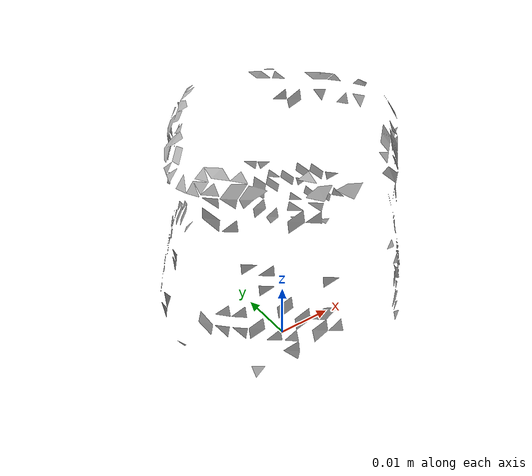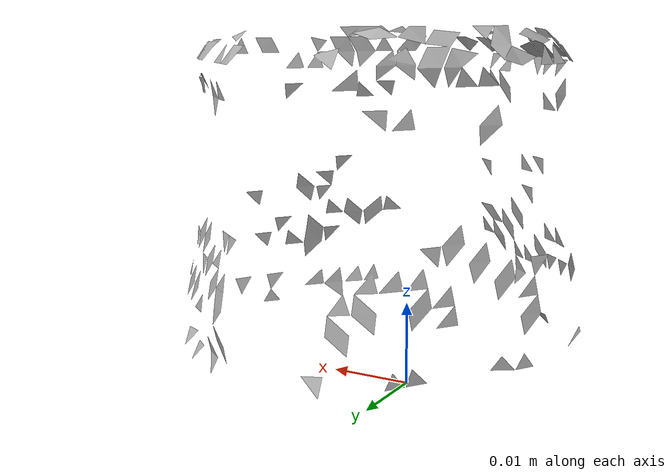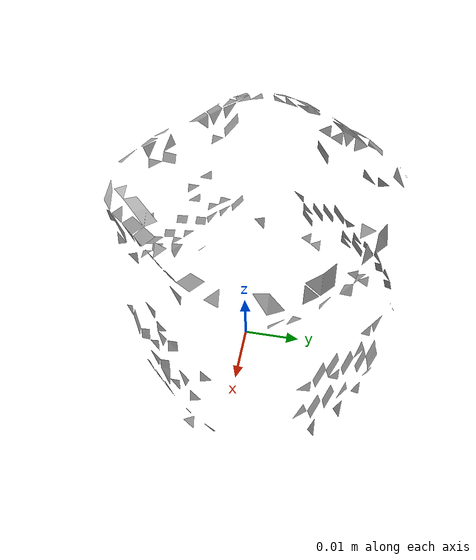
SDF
<?xml version='1.0'?>
<sdf version="1.4">
  <model name="l_lego_duplo">
    <static>false</static>
    <link name="link">
      <inertial>
        <pose>0.0021105867011519514 0.002944208566373363 0.025260479455036424 0.47435213470758286 -1.5317225807712165 -2.6083883275414825</pose>
        <mass>4.6457166154870454e-05</mass>
        <inertia>
          <ixx>9.802524578022326e-09</ixx>
          <ixy>-2.8434333556510326e-25</ixy>
          <ixz>2.5849394142282115e-24</ixz>
          <iyy>7.751042538054705e-09</iyy>
          <iyz>-1.4314102006288721e-24</iyz>
          <izz>7.668183954124964e-09</izz>
        </inertia>
      </inertial>
      <collision name="collision">
        <geometry>
          <mesh>
            <!-- Use a downsampled mesh for collisions -->
            <uri>model://073-l_lego_duplo/tsdf/textured.obj</uri>
          </mesh>
        </geometry>
        <surface>
      </surface>
      </collision>
      <visual name="visual">
        <geometry>
          <mesh>
            <uri>model://073-l_lego_duplo/tsdf/textured.obj</uri>
          </mesh>
        </geometry>
        <material>
          <script>
            <uri>model://073-l_lego_duplo/l_lego_duplo.material</uri>
            <name>l_lego_duplo</name>
          </script>
        </material>
      </visual>
    </link>
    <plugin name="ROSTFPublisher" filename="ROSRobotPosePublisherPlugin.so">
    </plugin>
  </model>
</sdf>
